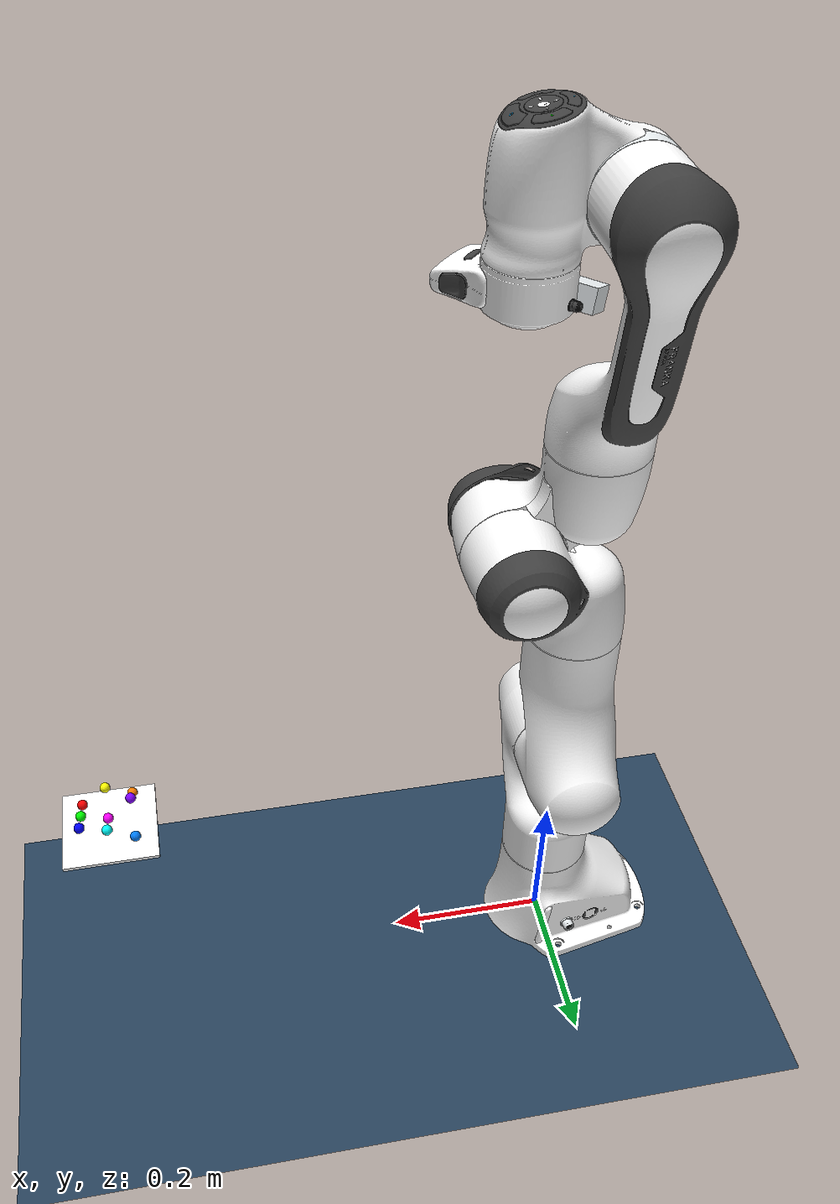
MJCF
<mujoco model="panda scene">
  <include file="panda_eye_in_hand.xml"/>

  <statistic center="0.3 0 0.4" extent="1"/>

  <visual>
    <headlight diffuse="0.6 0.6 0.6" ambient="0.3 0.3 0.3" specular="0 0 0"/>
    <rgba haze="0.15 0.25 0.35 1"/>
    <global azimuth="120" elevation="-20" offwidth="1280" offheight="960"/>
  </visual>

  <asset>
    <texture type="skybox" builtin="gradient" rgb1="0.3 0.5 0.7" rgb2="0 0 0" width="512" height="3072"/>
    <texture type="2d" name="groundplane" builtin="checker" mark="edge" rgb1="0.2 0.3 0.4" rgb2="0.1 0.2 0.3"
      markrgb="0.8 0.8 0.8" width="300" height="300"/>
    <material name="groundplane" texture="groundplane" texuniform="true" texrepeat="5 5" reflectance="0.2"/>
    <material name="board_body" rgba="0.98 0.98 0.98 1"/>
    <material name="marker_red" rgba="1 0 0 1" emission="1"/>
    <material name="marker_green" rgba="0 1 0 1" emission="1"/>
    <material name="marker_blue" rgba="0 0 1 1" emission="1"/>
    <material name="marker_yellow" rgba="1 1 0 1" emission="1"/>
    <material name="marker_magenta" rgba="1 0 1 1" emission="1"/>
    <material name="marker_cyan" rgba="0 1 1 1" emission="1"/>
    <material name="marker_orange" rgba="1 0.5 0 1" emission="1"/>
    <material name="marker_purple" rgba="0.5 0 1 1" emission="1"/>
    <material name="marker_azure" rgba="0 0.5 1 1" emission="1"/>
  </asset>

  <worldbody>
    <light pos="0 0 1.5" dir="0 0 -1" directional="true"/>
    <geom name="floor" size="0 0 0.05" type="plane" material="groundplane"/>

    <body name="calib_board" pos="0.55 0.02 0.32" quat="0.7071068 0 0 0.7071068">
      <inertial mass="0.05" pos="0 0 0" diaginertia="5e-5 5e-5 5e-5"/>
      <geom name="calib_board_plate" type="box" size="0.055 0.055 0.002" material="board_body" contype="0" conaffinity="0"/>
      <geom name="calib_marker_00" type="sphere" pos="-0.03 -0.03 0.010" size="0.006" material="marker_red" contype="0" conaffinity="0"/>
      <geom name="calib_marker_01" type="sphere" pos="0.0 -0.03 0.025" size="0.006" material="marker_green" contype="0" conaffinity="0"/>
      <geom name="calib_marker_02" type="sphere" pos="0.03 -0.03 0.040" size="0.006" material="marker_blue" contype="0" conaffinity="0"/>
      <geom name="calib_marker_10" type="sphere" pos="-0.03 0.0 0.035" size="0.006" material="marker_yellow" contype="0" conaffinity="0"/>
      <geom name="calib_marker_11" type="sphere" pos="0.0 0.0 0.015" size="0.006" material="marker_magenta" contype="0" conaffinity="0"/>
      <geom name="calib_marker_12" type="sphere" pos="0.03 0.0 0.030" size="0.006" material="marker_cyan" contype="0" conaffinity="0"/>
      <geom name="calib_marker_20" type="sphere" pos="-0.03 0.03 0.020" size="0.006" material="marker_orange" contype="0" conaffinity="0"/>
      <geom name="calib_marker_21" type="sphere" pos="0.0 0.03 0.045" size="0.006" material="marker_purple" contype="0" conaffinity="0"/>
      <geom name="calib_marker_22" type="sphere" pos="0.03 0.03 0.012" size="0.006" material="marker_azure" contype="0" conaffinity="0"/>
      <site name="calib_pt_00" pos="-0.03 -0.03 0.010" size="0.003" rgba="1 0 0 1"/>
      <site name="calib_pt_01" pos="0.0 -0.03 0.025" size="0.003" rgba="0 1 0 1"/>
      <site name="calib_pt_02" pos="0.03 -0.03 0.040" size="0.003" rgba="0 0 1 1"/>
      <site name="calib_pt_10" pos="-0.03 0.0 0.035" size="0.003" rgba="1 1 0 1"/>
      <site name="calib_pt_11" pos="0.0 0.0 0.015" size="0.003" rgba="1 0 1 1"/>
      <site name="calib_pt_12" pos="0.03 0.0 0.030" size="0.003" rgba="0 1 1 1"/>
      <site name="calib_pt_20" pos="-0.03 0.03 0.020" size="0.003" rgba="1 0.5 0 1"/>
      <site name="calib_pt_21" pos="0.0 0.03 0.045" size="0.003" rgba="0.5 0 1 1"/>
      <site name="calib_pt_22" pos="0.03 0.03 0.012" size="0.003" rgba="0 0.5 1 1"/>
    </body>
  </worldbody>
</mujoco>

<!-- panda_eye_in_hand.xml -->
<mujoco model="panda eye-in-hand">
  <compiler angle="radian" meshdir="franka_emika_panda/assets" autolimits="true"/>

  <option integrator="implicitfast" impratio="10"/>

  <default>
    <default class="panda">
      <material specular="0.5" shininess="0.25"/>
      <joint armature="0.1" damping="1" axis="0 0 1" range="-2.8973 2.8973"/>
      <general dyntype="none" biastype="affine" ctrlrange="-2.8973 2.8973" forcerange="-87 87"/>
      <default class="finger">
        <joint axis="0 1 0" type="slide" range="0 0.04"/>
      </default>

      <default class="panda/visual">
        <geom type="mesh" contype="0" conaffinity="0" group="2"/>
      </default>
      <default class="panda/collision">
        <geom type="mesh" group="3"/>
      </default>
      <site size="0.001" rgba="0.5 0.5 0.5 0.3" group="4"/>
    </default>
  </default>

  <asset>
    <material class="panda" name="white" rgba="1 1 1 1"/>
    <material class="panda" name="off_white" rgba="0.901961 0.921569 0.929412 1"/>
    <material class="panda" name="dark_grey" rgba="0.25 0.25 0.25 1"/>
    <material class="panda" name="green" rgba="0 1 0 1"/>
    <material class="panda" name="light_blue" rgba="0.039216 0.541176 0.780392 1"/>

    <!-- Collision meshes -->
    <mesh name="link0_c" file="link0.stl"/>
    <mesh name="link1_c" file="link1.stl"/>
    <mesh name="link2_c" file="link2.stl"/>
    <mesh name="link3_c" file="link3.stl"/>
    <mesh name="link4_c" file="link4.stl"/>
    <mesh name="link5_c0" file="link5_collision_0.obj"/>
    <mesh name="link5_c1" file="link5_collision_1.obj"/>
    <mesh name="link5_c2" file="link5_collision_2.obj"/>
    <mesh name="link6_c" file="link6.stl"/>
    <mesh name="link7_c" file="link7.stl"/>

    <!-- Visual meshes -->
    <mesh file="link0_0.obj"/>
    <mesh file="link0_1.obj"/>
    <mesh file="link0_2.obj"/>
    <mesh file="link0_3.obj"/>
    <mesh file="link0_4.obj"/>
    <mesh file="link0_5.obj"/>
    <mesh file="link0_7.obj"/>
    <mesh file="link0_8.obj"/>
    <mesh file="link0_9.obj"/>
    <mesh file="link0_10.obj"/>
    <mesh file="link0_11.obj"/>
    <mesh file="link1.obj"/>
    <mesh file="link2.obj"/>
    <mesh file="link3_0.obj"/>
    <mesh file="link3_1.obj"/>
    <mesh file="link3_2.obj"/>
    <mesh file="link3_3.obj"/>
    <mesh file="link4_0.obj"/>
    <mesh file="link4_1.obj"/>
    <mesh file="link4_2.obj"/>
    <mesh file="link4_3.obj"/>
    <mesh file="link5_0.obj"/>
    <mesh file="link5_1.obj"/>
    <mesh file="link5_2.obj"/>
    <mesh file="link6_0.obj"/>
    <mesh file="link6_1.obj"/>
    <mesh file="link6_2.obj"/>
    <mesh file="link6_3.obj"/>
    <mesh file="link6_4.obj"/>
    <mesh file="link6_5.obj"/>
    <mesh file="link6_6.obj"/>
    <mesh file="link6_7.obj"/>
    <mesh file="link6_8.obj"/>
    <mesh file="link6_9.obj"/>
    <mesh file="link6_10.obj"/>
    <mesh file="link6_11.obj"/>
    <mesh file="link6_12.obj"/>
    <mesh file="link6_13.obj"/>
    <mesh file="link6_14.obj"/>
    <mesh file="link6_15.obj"/>
    <mesh file="link6_16.obj"/>
    <mesh file="link7_0.obj"/>
    <mesh file="link7_1.obj"/>
    <mesh file="link7_2.obj"/>
    <mesh file="link7_3.obj"/>
    <mesh file="link7_4.obj"/>
    <mesh file="link7_5.obj"/>
    <mesh file="link7_6.obj"/>
    <mesh file="link7_7.obj"/>
  </asset>

  <worldbody>
    <light name="top" pos="0 0 2" mode="trackcom"/>
    <body name="link0" childclass="panda">
      <inertial mass="0.629769" pos="-0.041018 -0.00014 0.049974"
        fullinertia="0.00315 0.00388 0.004285 8.2904e-7 0.00015 8.2299e-6"/>
      <geom mesh="link0_0" material="off_white" class="panda/visual"/>
      <geom mesh="link0_1" material="dark_grey" class="panda/visual"/>
      <geom mesh="link0_2" material="off_white" class="panda/visual"/>
      <geom mesh="link0_3" material="dark_grey" class="panda/visual"/>
      <geom mesh="link0_4" material="off_white" class="panda/visual"/>
      <geom mesh="link0_5" material="dark_grey" class="panda/visual"/>
      <geom mesh="link0_7" material="white" class="panda/visual"/>
      <geom mesh="link0_8" material="white" class="panda/visual"/>
      <geom mesh="link0_9" material="dark_grey" class="panda/visual"/>
      <geom mesh="link0_10" material="off_white" class="panda/visual"/>
      <geom mesh="link0_11" material="white" class="panda/visual"/>
      <geom mesh="link0_c" class="panda/collision"/>
      <body name="link1" pos="0 0 0.333">
        <inertial mass="4.970684" pos="0.003875 0.002081 -0.04762"
          fullinertia="0.70337 0.70661 0.0091170 -0.00013900 0.0067720 0.019169"/>
        <joint name="joint1"/>
        <geom material="white" mesh="link1" class="panda/visual"/>
        <geom mesh="link1_c" class="panda/collision"/>
        <body name="link2" quat="1 -1 0 0">
          <inertial mass="0.646926" pos="-0.003141 -0.02872 0.003495"
            fullinertia="0.0079620 2.8110e-2 2.5995e-2 -3.925e-3 1.0254e-2 7.04e-4"/>
          <joint name="joint2" range="-1.7628 1.7628"/>
          <geom material="white" mesh="link2" class="panda/visual"/>
          <geom mesh="link2_c" class="panda/collision"/>
          <body name="link3" pos="0 -0.316 0" quat="1 1 0 0">
            <joint name="joint3"/>
            <inertial mass="3.228604" pos="2.7518e-2 3.9252e-2 -6.6502e-2"
              fullinertia="3.7242e-2 3.6155e-2 1.083e-2 -4.761e-3 -1.1396e-2 -1.2805e-2"/>
            <geom mesh="link3_0" material="white" class="panda/visual"/>
            <geom mesh="link3_1" material="white" class="panda/visual"/>
            <geom mesh="link3_2" material="white" class="panda/visual"/>
            <geom mesh="link3_3" material="dark_grey" class="panda/visual"/>
            <geom mesh="link3_c" class="panda/collision"/>
            <body name="link4" pos="0.0825 0 0" quat="1 1 0 0">
              <inertial mass="3.587895" pos="-5.317e-2 1.04419e-1 2.7454e-2"
                fullinertia="2.5853e-2 1.9552e-2 2.8323e-2 7.796e-3 -1.332e-3 8.641e-3"/>
              <joint name="joint4" range="-3.0718 -0.0698"/>
              <geom mesh="link4_0" material="white" class="panda/visual"/>
              <geom mesh="link4_1" material="white" class="panda/visual"/>
              <geom mesh="link4_2" material="dark_grey" class="panda/visual"/>
              <geom mesh="link4_3" material="white" class="panda/visual"/>
              <geom mesh="link4_c" class="panda/collision"/>
              <body name="link5" pos="-0.0825 0.384 0" quat="1 -1 0 0">
                <inertial mass="1.225946" pos="-1.1953e-2 4.1065e-2 -3.8437e-2"
                  fullinertia="3.5549e-2 2.9474e-2 8.627e-3 -2.117e-3 -4.037e-3 2.29e-4"/>
                <joint name="joint5"/>
                <geom mesh="link5_0" material="dark_grey" class="panda/visual"/>
                <geom mesh="link5_1" material="white" class="panda/visual"/>
                <geom mesh="link5_2" material="white" class="panda/visual"/>
                <geom mesh="link5_c0" class="panda/collision"/>
                <geom mesh="link5_c1" class="panda/collision"/>
                <geom mesh="link5_c2" class="panda/collision"/>
                <body name="link6" quat="1 1 0 0">
                  <inertial mass="1.666555" pos="6.0149e-2 -1.4117e-2 -1.0517e-2"
                    fullinertia="1.964e-3 4.354e-3 5.433e-3 1.09e-4 -1.158e-3 3.41e-4"/>
                  <joint name="joint6" range="-0.0175 3.7525"/>
                  <geom mesh="link6_0" material="off_white" class="panda/visual"/>
                  <geom mesh="link6_1" material="white" class="panda/visual"/>
                  <geom mesh="link6_2" material="dark_grey" class="panda/visual"/>
                  <geom mesh="link6_3" material="white" class="panda/visual"/>
                  <geom mesh="link6_4" material="white" class="panda/visual"/>
                  <geom mesh="link6_5" material="white" class="panda/visual"/>
                  <geom mesh="link6_6" material="white" class="panda/visual"/>
                  <geom mesh="link6_7" material="light_blue" class="panda/visual"/>
                  <geom mesh="link6_8" material="light_blue" class="panda/visual"/>
                  <geom mesh="link6_9" material="dark_grey" class="panda/visual"/>
                  <geom mesh="link6_10" material="dark_grey" class="panda/visual"/>
                  <geom mesh="link6_11" material="white" class="panda/visual"/>
                  <geom mesh="link6_12" material="green" class="panda/visual"/>
                  <geom mesh="link6_13" material="white" class="panda/visual"/>
                  <geom mesh="link6_14" material="dark_grey" class="panda/visual"/>
                  <geom mesh="link6_15" material="dark_grey" class="panda/visual"/>
                  <geom mesh="link6_16" material="white" class="panda/visual"/>
                  <geom mesh="link6_c" class="panda/collision"/>
                  <body name="link7" pos="0.088 0 0" quat="1 1 0 0">
                    <inertial mass="7.35522e-01" pos="1.0517e-2 -4.252e-3 6.1597e-2"
                      fullinertia="1.2516e-2 1.0027e-2 4.815e-3 -4.28e-4 -1.196e-3 -7.41e-4"/>
                    <joint name="joint7"/>
                    <geom mesh="link7_0" material="white" class="panda/visual"/>
                    <geom mesh="link7_1" material="dark_grey" class="panda/visual"/>
                    <geom mesh="link7_2" material="dark_grey" class="panda/visual"/>
                    <geom mesh="link7_3" material="dark_grey" class="panda/visual"/>
                    <geom mesh="link7_4" material="dark_grey" class="panda/visual"/>
                    <geom mesh="link7_5" material="dark_grey" class="panda/visual"/>
                    <geom mesh="link7_6" material="dark_grey" class="panda/visual"/>
                    <geom mesh="link7_7" material="white" class="panda/visual"/>
                    <geom mesh="link7_c" class="panda/collision"/>
                    <body name="attachment" pos="0 0 0.107" quat="0.3826834 0 0 0.9238795">
                      <site name="attachment_site" group="2"/>
                      <!-- Eye-in-Hand Camera: Intel RealSense D435 Mount -->
                      <!-- Offset 6cm outward from flange center, tilted 15 deg (0.2618 rad) towards center -->
                      <body name="realsense_mount" pos="0.06 0 0" euler="0 -0.2618 0">
                        <inertial mass="0.072" pos="0 0 0" diaginertia="3.8e-5 1.1e-5 3.8e-5"/>

                        <!-- Collision geometry -->
                        <geom type="box" size="0.0125 0.045 0.0125" group="3"/>

                        <!-- Visual representation of the Realsense D435 -->
                        <!-- Using explicit primitive types to bypass the default mesh class -->
                        <geom type="box" size="0.0125 0.045 0.0125" material="off_white" contype="0" conaffinity="0" group="2"/>
                        <!-- Visual Lenses (RGB & IRs) -->
                        <geom type="cylinder" size="0.005 0.002" pos="0 0.015 0.0125" material="dark_grey" contype="0" conaffinity="0" group="2"/>
                        <geom type="cylinder" size="0.005 0.002" pos="0 -0.015 0.0125" material="dark_grey" contype="0" conaffinity="0" group="2"/>
                        <geom type="cylinder" size="0.005 0.002" pos="0 -0.03 0.0125" material="dark_grey" contype="0" conaffinity="0" group="2"/>

                        <!-- RealSense D435 RGB Camera Sensor -->
                        <!-- fovy=69 roughly matches D435 RGB vertical FOV. -->
                        <!-- xyaxes configures MuJoCo's OpenGL camera (-Z look) to look outward in the robot's +Z direction while keeping right/up axes standard -->
                        <camera name="eye_in_hand" pos="0 0 0.0125" xyaxes="0 1 0 1 0 0" fovy="69"/>
                      </body>
                    </body>
                  </body>
                </body>
              </body>
            </body>
          </body>
        </body>
      </body>
    </body>
  </worldbody>

  <actuator>
    <general class="panda" name="actuator1" joint="joint1" gainprm="4500" biasprm="0 -4500 -450"/>
    <general class="panda" name="actuator2" joint="joint2" gainprm="4500" biasprm="0 -4500 -450"
      ctrlrange="-1.7628 1.7628"/>
    <general class="panda" name="actuator3" joint="joint3" gainprm="3500" biasprm="0 -3500 -350"/>
    <general class="panda" name="actuator4" joint="joint4" gainprm="3500" biasprm="0 -3500 -350"
      ctrlrange="-3.0718 -0.0698"/>
    <general class="panda" name="actuator5" joint="joint5" gainprm="2000" biasprm="0 -2000 -200" forcerange="-12 12"/>
    <general class="panda" name="actuator6" joint="joint6" gainprm="2000" biasprm="0 -2000 -200" forcerange="-12 12"
      ctrlrange="-0.0175 3.7525"/>
    <general class="panda" name="actuator7" joint="joint7" gainprm="2000" biasprm="0 -2000 -200" forcerange="-12 12"/>
  </actuator>

  <contact>
    <exclude body1="link0" body2="link1"/>
  </contact>

  <keyframe>
    <key name="home" qpos="0 0 0 -1.57079 0 1.57079 -0.7853" ctrl="0 0 0 -1.57079 0 1.57079 -0.7853"/>
  </keyframe>
</mujoco>
